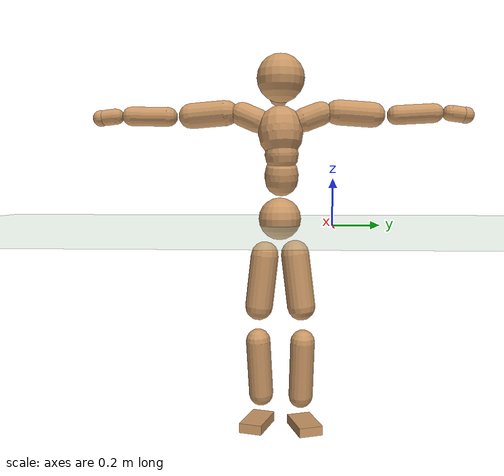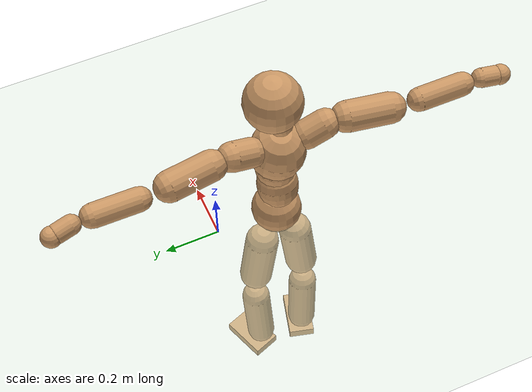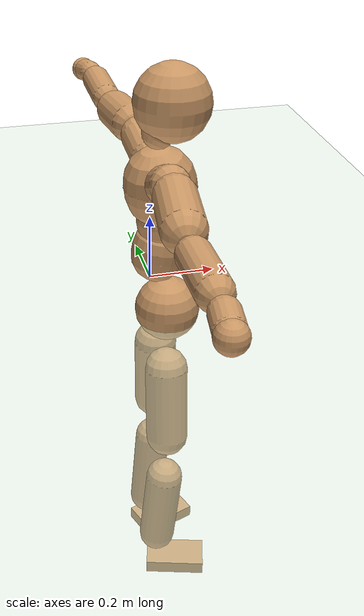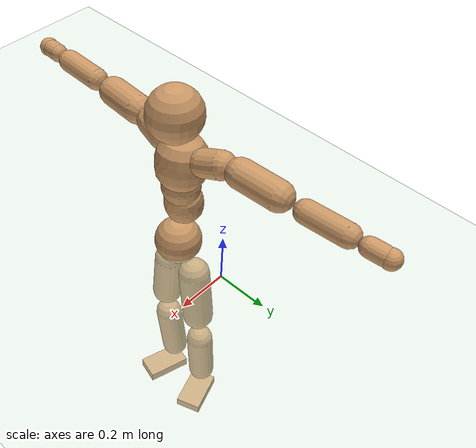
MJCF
<mujoco model="humanoid">
  <compiler coordinate="local"/>
  <default>
    <joint damping="0.0" armature="0.01" stiffness="0.0" limited="true"/>
    <geom conaffinity="1" condim="3" contype="7" margin="0.001" rgba="0.8 0.6 .4 1"/>
  </default>
  <asset>
    <texture type="skybox" builtin="gradient" rgb1=".4 .5 .6" rgb2="0 0 0" width="100" height="100"/>
    <texture builtin="flat" height="1278" mark="cross" markrgb="1 1 1" name="texgeom" random="0.01" rgb1="0.8 0.6 0.4" rgb2="0.8 0.6 0.4" type="cube" width="127"/>
    <texture builtin="checker" height="100" name="texplane" rgb1="0 0 0" rgb2="0.8 0.8 0.8" type="2d" width="100"/>
    <material name="MatPlane" reflectance="0.5" shininess="1" specular="1" texrepeat="60 60" texture="texplane"/>
    <material name="geom" texture="texgeom" texuniform="true"/>
  </asset>
  <worldbody>
    <light cutoff="100" diffuse="1 1 1" dir="-0 0 -1.3" directional="true" exponent="1" pos="0 0 1.3" specular=".1 .1 .1"/>
    <geom conaffinity="1" condim="3" name="floor" pos="0 0 0" rgba="0.8 0.9 0.8 1" size="100 100 .2" type="plane" material="MatPlane"/>
    <body name="Pelvis" pos="-0.003 -0.2279 0.0277">
      <freejoint name="Pelvis"/>
      <geom type="sphere" contype="1" conaffinity="1" density="500" size="0.0915" pos="0.0000 0.0000 0.0000" name="Pelvis"/>
      <body name="L_Hip" pos="-0.0194 0.0571 -0.0789">
        <joint name="L_Hip_x" type="hinge" pos="0 0 0" axis="1 0 0" stiffness="800" damping="80" armature="0.02" range="-180.0000 180.0000"/>
        <joint name="L_Hip_y" type="hinge" pos="0 0 0" axis="0 1 0" stiffness="800" damping="80" armature="0.02" range="-180.0000 180.0000"/>
        <joint name="L_Hip_z" type="hinge" pos="0 0 0" axis="0 0 1" stiffness="800" damping="80" armature="0.02" range="-180.0000 180.0000"/>
        <geom type="capsule" contype="1" conaffinity="1" density="500" fromto="0.0022 0.0092 -0.0769 0.0086 0.0367 -0.3076" size="0.062" name="L_Hip"/>
        <body name="L_Knee" pos="0.0108 0.0459 -0.3845">
          <joint name="L_Knee_x" type="hinge" pos="0 0 0" axis="1 0 0" stiffness="800" damping="80" armature="0.02" range="-180.0000 180.0000"/>
          <joint name="L_Knee_y" type="hinge" pos="0 0 0" axis="0 1 0" stiffness="800" damping="80" armature="0.02" range="-180.0000 180.0000"/>
          <joint name="L_Knee_z" type="hinge" pos="0 0 0" axis="0 0 1" stiffness="800" damping="80" armature="0.02" range="-180.0000 180.0000"/>
          <geom type="capsule" contype="1" conaffinity="1" density="500" fromto="-0.0069 -0.0028 -0.0844 -0.0278 -0.0111 -0.3375" size="0.0542" name="L_Knee"/>
          <body name="L_Ankle" pos="-0.0347 -0.0139 -0.4219">
            <joint name="L_Ankle_x" type="hinge" pos="0 0 0" axis="1 0 0" stiffness="800" damping="80" armature="0.02" range="-180.0000 180.0000"/>
            <joint name="L_Ankle_y" type="hinge" pos="0 0 0" axis="0 1 0" stiffness="800" damping="80" armature="0.02" range="-180.0000 180.0000"/>
            <joint name="L_Ankle_z" type="hinge" pos="0 0 0" axis="0 0 1" stiffness="800" damping="80" armature="0.02" range="-180.0000 180.0000"/>
            <geom type="box" contype="1" conaffinity="1" density="500" pos="0.0602 0.0216 -0.0299" size="0.0888 0.0527 0.0202" quat="0.9852 0.0000 0.0000 0.1713" name="L_Ankle"/>
            <body name="L_Toe" pos="0.1203 0.0432 -0.0599">
              <joint name="L_Toe_x" type="hinge" pos="0 0 0" axis="1 0 0" stiffness="500" damping="50" armature="0.02" range="-180.0000 180.0000"/>
              <joint name="L_Toe_y" type="hinge" pos="0 0 0" axis="0 1 0" stiffness="500" damping="50" armature="0.02" range="-180.0000 180.0000"/>
              <joint name="L_Toe_z" type="hinge" pos="0 0 0" axis="0 0 1" stiffness="500" damping="50" armature="0.02" range="-180.0000 180.0000"/>
              <geom type="box" contype="1" conaffinity="1" density="500" pos="0.0000 0.0000 0.0293" size="0.0011 0.0026 0.001" quat="0.9844 0.0000 0.0000 0.1759" name="L_Toe"/>
            </body>
          </body>
        </body>
      </body>
      <body name="R_Hip" pos="-0.0161 -0.0582 -0.0862">
        <joint name="R_Hip_x" type="hinge" pos="0 0 0" axis="1 0 0" stiffness="800" damping="80" armature="0.02" range="-180.0000 180.0000"/>
        <joint name="R_Hip_y" type="hinge" pos="0 0 0" axis="0 1 0" stiffness="800" damping="80" armature="0.02" range="-180.0000 180.0000"/>
        <joint name="R_Hip_z" type="hinge" pos="0 0 0" axis="0 0 1" stiffness="800" damping="80" armature="0.02" range="-180.0000 180.0000"/>
        <geom type="capsule" contype="1" conaffinity="1" density="500" fromto="-0.0006 -0.0087 -0.0758 -0.0023 -0.0349 -0.3031" size="0.0612" name="R_Hip"/>
        <body name="R_Knee" pos="-0.0029 -0.0436 -0.3789">
          <joint name="R_Knee_x" type="hinge" pos="0 0 0" axis="1 0 0" stiffness="800" damping="80" armature="0.02" range="-180.0000 180.0000"/>
          <joint name="R_Knee_y" type="hinge" pos="0 0 0" axis="0 1 0" stiffness="800" damping="80" armature="0.02" range="-180.0000 180.0000"/>
          <joint name="R_Knee_z" type="hinge" pos="0 0 0" axis="0 0 1" stiffness="800" damping="80" armature="0.02" range="-180.0000 180.0000"/>
          <geom type="capsule" contype="1" conaffinity="1" density="500" fromto="-0.0065 0.0036 -0.0827 -0.0262 0.0146 -0.3307" size="0.0545" name="R_Knee"/>
          <body name="R_Ankle" pos="-0.0327 0.0182 -0.4134">
            <joint name="R_Ankle_x" type="hinge" pos="0 0 0" axis="1 0 0" stiffness="800" damping="80" armature="0.02" range="-180.0000 180.0000"/>
            <joint name="R_Ankle_y" type="hinge" pos="0 0 0" axis="0 1 0" stiffness="800" damping="80" armature="0.02" range="-180.0000 180.0000"/>
            <joint name="R_Ankle_z" type="hinge" pos="0 0 0" axis="0 0 1" stiffness="800" damping="80" armature="0.02" range="-180.0000 180.0000"/>
            <geom type="box" contype="1" conaffinity="1" density="500" pos="0.0646 -0.0174 -0.0302" size="0.0906 0.0505 0.0211" quat="0.9913 0.0000 0.0000 -0.1315" name="R_Ankle"/>
            <body name="R_Toe" pos="0.1292 -0.0349 -0.0604">
              <joint name="R_Toe_x" type="hinge" pos="0 0 0" axis="1 0 0" stiffness="500" damping="50" armature="0.02" range="-180.0000 180.0000"/>
              <joint name="R_Toe_y" type="hinge" pos="0 0 0" axis="0 1 0" stiffness="500" damping="50" armature="0.02" range="-180.0000 180.0000"/>
              <joint name="R_Toe_z" type="hinge" pos="0 0 0" axis="0 0 1" stiffness="500" damping="50" armature="0.02" range="-180.0000 180.0000"/>
              <geom type="box" contype="1" conaffinity="1" density="500" pos="0.0000 0.0000 0.0299" size="0.001 0.0025 0.001" quat="0.9925 0.0000 0.0000 -0.1225" name="R_Toe"/>
            </body>
          </body>
        </body>
      </body>
      <body name="Torso" pos="-0.0377 0.0041 0.117">
        <joint name="Torso_x" type="hinge" pos="0 0 0" axis="1 0 0" stiffness="1000" damping="100" armature="0.02" range="-180.0000 180.0000"/>
        <joint name="Torso_y" type="hinge" pos="0 0 0" axis="0 1 0" stiffness="1000" damping="100" armature="0.02" range="-180.0000 180.0000"/>
        <joint name="Torso_z" type="hinge" pos="0 0 0" axis="0 0 1" stiffness="1000" damping="100" armature="0.02" range="-180.0000 180.0000"/>
        <geom type="capsule" contype="1" conaffinity="1" density="500" fromto="0.0146 0.0023 0.0794 0.0098 0.0016 0.0529" size="0.0732" name="Torso"/>
        <body name="Spine" pos="0.0244 0.0039 0.1323">
          <joint name="Spine_x" type="hinge" pos="0 0 0" axis="1 0 0" stiffness="1000" damping="100" armature="0.02" range="-180.0000 180.0000"/>
          <joint name="Spine_y" type="hinge" pos="0 0 0" axis="0 1 0" stiffness="1000" damping="100" armature="0.02" range="-180.0000 180.0000"/>
          <joint name="Spine_z" type="hinge" pos="0 0 0" axis="0 0 1" stiffness="1000" damping="100" armature="0.02" range="-180.0000 180.0000"/>
          <geom type="capsule" contype="1" conaffinity="1" density="500" fromto="0.0013 -0.0009 0.0324 0.0009 -0.0006 0.0216" size="0.073" name="Spine"/>
          <body name="Chest" pos="0.0021 -0.0015 0.0541">
            <joint name="Chest_x" type="hinge" pos="0 0 0" axis="1 0 0" stiffness="1000" damping="100" armature="0.02" range="-180.0000 180.0000"/>
            <joint name="Chest_y" type="hinge" pos="0 0 0" axis="0 1 0" stiffness="1000" damping="100" armature="0.02" range="-180.0000 180.0000"/>
            <joint name="Chest_z" type="hinge" pos="0 0 0" axis="0 0 1" stiffness="1000" damping="100" armature="0.02" range="-180.0000 180.0000"/>
            <geom type="capsule" contype="1" conaffinity="1" density="500" fromto="-0.0131 -0.0046 0.0846 -0.0087 -0.0031 0.0564" size="0.0971" name="Chest"/>
            <body name="Neck" pos="-0.0289 -0.0128 0.2043">
              <joint name="Neck_x" type="hinge" pos="0 0 0" axis="1 0 0" stiffness="500" damping="50" armature="0.02" range="-180.0000 180.0000"/>
              <joint name="Neck_y" type="hinge" pos="0 0 0" axis="0 1 0" stiffness="500" damping="50" armature="0.02" range="-180.0000 180.0000"/>
              <joint name="Neck_z" type="hinge" pos="0 0 0" axis="0 0 1" stiffness="500" damping="50" armature="0.02" range="-180.0000 180.0000"/>
              <geom type="capsule" contype="1" conaffinity="1" density="500" fromto="0.0095 0.0022 0.0176 0.0378 0.0087 0.0703" size="0.0439" name="Neck"/>
              <body name="Head" pos="0.0473 0.0109 0.0879">
                <joint name="Head_x" type="hinge" pos="0 0 0" axis="1 0 0" stiffness="500" damping="50" armature="0.02" range="-180.0000 180.0000"/>
                <joint name="Head_y" type="hinge" pos="0 0 0" axis="0 1 0" stiffness="500" damping="50" armature="0.02" range="-180.0000 180.0000"/>
                <joint name="Head_z" type="hinge" pos="0 0 0" axis="0 0 1" stiffness="500" damping="50" armature="0.02" range="-180.0000 180.0000"/>
                <geom type="sphere" contype="1" conaffinity="1" density="500" size="0.1020" pos="0.0000 0.0000 0.0000" name="Head"/>
              </body>
            </body>
            <body name="L_Thorax" pos="-0.0152 0.07 0.1105">
              <joint name="L_Thorax_x" type="hinge" pos="0 0 0" axis="1 0 0" stiffness="500" damping="50" armature="0.02" range="-180.0000 180.0000"/>
              <joint name="L_Thorax_y" type="hinge" pos="0 0 0" axis="0 1 0" stiffness="500" damping="50" armature="0.02" range="-180.0000 180.0000"/>
              <joint name="L_Thorax_z" type="hinge" pos="0 0 0" axis="0 0 1" stiffness="500" damping="50" armature="0.02" range="-180.0000 180.0000"/>
              <geom type="capsule" contype="1" conaffinity="1" density="500" fromto="-0.0033 0.0243 0.0094 -0.0131 0.0973 0.0376" size="0.052" name="L_Thorax"/>
              <body name="L_Shoulder" pos="-0.0164 0.1216 0.0469">
                <joint name="L_Shoulder_x" type="hinge" pos="0 0 0" axis="1 0 0" stiffness="500" damping="50" armature="0.02" range="-720.0000 720.0000"/>
                <joint name="L_Shoulder_y" type="hinge" pos="0 0 0" axis="0 1 0" stiffness="500" damping="50" armature="0.02" range="-720.0000 720.0000"/>
                <joint name="L_Shoulder_z" type="hinge" pos="0 0 0" axis="0 0 1" stiffness="500" damping="50" armature="0.02" range="-720.0000 720.0000"/>
                <geom type="capsule" contype="1" conaffinity="1" density="500" fromto="-0.0047 0.0502 -0.0034 -0.0188 0.2010 -0.0135" size="0.0545" name="L_Shoulder"/>
                <body name="L_Elbow" pos="-0.0235 0.2512 -0.0169">
                  <joint name="L_Elbow_x" type="hinge" pos="0 0 0" axis="1 0 0" stiffness="500" damping="50" armature="0.02" range="-720.0000 720.0000"/>
                  <joint name="L_Elbow_y" type="hinge" pos="0 0 0" axis="0 1 0" stiffness="500" damping="50" armature="0.02" range="-720.0000 720.0000"/>
                  <joint name="L_Elbow_z" type="hinge" pos="0 0 0" axis="0 0 1" stiffness="500" damping="50" armature="0.02" range="-720.0000 720.0000"/>
                  <geom type="capsule" contype="1" conaffinity="1" density="500" fromto="-0.0013 0.0534 0.0027 -0.0051 0.2136 0.0108" size="0.0419" name="L_Elbow"/>
                  <body name="L_Wrist" pos="-0.0064 0.267 0.0136">
                    <joint name="L_Wrist_x" type="hinge" pos="0 0 0" axis="1 0 0" stiffness="300" damping="30" armature="0.02" range="-180.0000 180.0000"/>
                    <joint name="L_Wrist_y" type="hinge" pos="0 0 0" axis="0 1 0" stiffness="300" damping="30" armature="0.02" range="-180.0000 180.0000"/>
                    <joint name="L_Wrist_z" type="hinge" pos="0 0 0" axis="0 0 1" stiffness="300" damping="30" armature="0.02" range="-180.0000 180.0000"/>
                    <geom type="capsule" contype="1" conaffinity="1" density="500" fromto="-0.0032 0.0176 -0.0022 -0.0128 0.0704 -0.0087" size="0.0343" name="L_Wrist"/>
                    <body name="L_Hand" pos="-0.016 0.0881 -0.0109">
                      <joint name="L_Hand_x" type="hinge" pos="0 0 0" axis="1 0 0" stiffness="300" damping="30" armature="0.02" range="-180.0000 180.0000"/>
                      <joint name="L_Hand_y" type="hinge" pos="0 0 0" axis="0 1 0" stiffness="300" damping="30" armature="0.02" range="-180.0000 180.0000"/>
                      <joint name="L_Hand_z" type="hinge" pos="0 0 0" axis="0 0 1" stiffness="300" damping="30" armature="0.02" range="-180.0000 180.0000"/>
                      <geom type="sphere" contype="1" conaffinity="1" density="500" size="0.0360" pos="0.0000 0.0000 0.0000" name="L_Hand"/>
                    </body>
                  </body>
                </body>
              </body>
            </body>
            <body name="R_Thorax" pos="-0.0215 -0.0804 0.1081">
              <joint name="R_Thorax_x" type="hinge" pos="0 0 0" axis="1 0 0" stiffness="500" damping="50" armature="0.02" range="-180.0000 180.0000"/>
              <joint name="R_Thorax_y" type="hinge" pos="0 0 0" axis="0 1 0" stiffness="500" damping="50" armature="0.02" range="-180.0000 180.0000"/>
              <joint name="R_Thorax_z" type="hinge" pos="0 0 0" axis="0 0 1" stiffness="500" damping="50" armature="0.02" range="-180.0000 180.0000"/>
              <geom type="capsule" contype="1" conaffinity="1" density="500" fromto="-0.0014 -0.0224 0.0098 -0.0057 -0.0894 0.0391" size="0.0521" name="R_Thorax"/>
              <body name="R_Shoulder" pos="-0.0071 -0.1118 0.0488">
                <joint name="R_Shoulder_x" type="hinge" pos="0 0 0" axis="1 0 0" stiffness="500" damping="50" armature="0.02" range="-720.0000 720.0000"/>
                <joint name="R_Shoulder_y" type="hinge" pos="0 0 0" axis="0 1 0" stiffness="500" damping="50" armature="0.02" range="-720.0000 720.0000"/>
                <joint name="R_Shoulder_z" type="hinge" pos="0 0 0" axis="0 0 1" stiffness="500" damping="50" armature="0.02" range="-720.0000 720.0000"/>
                <geom type="capsule" contype="1" conaffinity="1" density="500" fromto="-0.0063 -0.0515 -0.0035 -0.0253 -0.2058 -0.0138" size="0.0552" name="R_Shoulder"/>
                <body name="R_Elbow" pos="-0.0316 -0.2573 -0.0173">
                  <joint name="R_Elbow_x" type="hinge" pos="0 0 0" axis="1 0 0" stiffness="500" damping="50" armature="0.02" range="-720.0000 720.0000"/>
                  <joint name="R_Elbow_y" type="hinge" pos="0 0 0" axis="0 1 0" stiffness="500" damping="50" armature="0.02" range="-720.0000 720.0000"/>
                  <joint name="R_Elbow_z" type="hinge" pos="0 0 0" axis="0 0 1" stiffness="500" damping="50" armature="0.02" range="-720.0000 720.0000"/>
                  <geom type="capsule" contype="1" conaffinity="1" density="500" fromto="-0.0009 -0.0538 0.0013 -0.0034 -0.2154 0.0050" size="0.0422" name="R_Elbow"/>
                  <body name="R_Wrist" pos="-0.0043 -0.2692 0.0063">
                    <joint name="R_Wrist_x" type="hinge" pos="0 0 0" axis="1 0 0" stiffness="300" damping="30" armature="0.02" range="-180.0000 180.0000"/>
                    <joint name="R_Wrist_y" type="hinge" pos="0 0 0" axis="0 1 0" stiffness="300" damping="30" armature="0.02" range="-180.0000 180.0000"/>
                    <joint name="R_Wrist_z" type="hinge" pos="0 0 0" axis="0 0 1" stiffness="300" damping="30" armature="0.02" range="-180.0000 180.0000"/>
                    <geom type="capsule" contype="1" conaffinity="1" density="500" fromto="-0.0021 -0.0179 -0.0018 -0.0084 -0.0715 -0.0070" size="0.0346" name="R_Wrist"/>
                    <body name="R_Hand" pos="-0.0105 -0.0894 -0.0088">
                      <joint name="R_Hand_x" type="hinge" pos="0 0 0" axis="1 0 0" stiffness="300" damping="30" armature="0.02" range="-180.0000 180.0000"/>
                      <joint name="R_Hand_y" type="hinge" pos="0 0 0" axis="0 1 0" stiffness="300" damping="30" armature="0.02" range="-180.0000 180.0000"/>
                      <joint name="R_Hand_z" type="hinge" pos="0 0 0" axis="0 0 1" stiffness="300" damping="30" armature="0.02" range="-180.0000 180.0000"/>
                      <geom type="sphere" contype="1" conaffinity="1" density="500" size="0.0362" pos="0.0000 0.0000 0.0000" name="R_Hand"/>
                    </body>
                  </body>
                </body>
              </body>
            </body>
          </body>
        </body>
      </body>
    </body>
  </worldbody>
  <actuator>
    <motor name="L_Hip_x" joint="L_Hip_x" gear="500"/>
    <motor name="L_Hip_y" joint="L_Hip_y" gear="500"/>
    <motor name="L_Hip_z" joint="L_Hip_z" gear="500"/>
    <motor name="L_Knee_x" joint="L_Knee_x" gear="500"/>
    <motor name="L_Knee_y" joint="L_Knee_y" gear="500"/>
    <motor name="L_Knee_z" joint="L_Knee_z" gear="500"/>
    <motor name="L_Ankle_x" joint="L_Ankle_x" gear="500"/>
    <motor name="L_Ankle_y" joint="L_Ankle_y" gear="500"/>
    <motor name="L_Ankle_z" joint="L_Ankle_z" gear="500"/>
    <motor name="L_Toe_x" joint="L_Toe_x" gear="500"/>
    <motor name="L_Toe_y" joint="L_Toe_y" gear="500"/>
    <motor name="L_Toe_z" joint="L_Toe_z" gear="500"/>
    <motor name="R_Hip_x" joint="R_Hip_x" gear="500"/>
    <motor name="R_Hip_y" joint="R_Hip_y" gear="500"/>
    <motor name="R_Hip_z" joint="R_Hip_z" gear="500"/>
    <motor name="R_Knee_x" joint="R_Knee_x" gear="500"/>
    <motor name="R_Knee_y" joint="R_Knee_y" gear="500"/>
    <motor name="R_Knee_z" joint="R_Knee_z" gear="500"/>
    <motor name="R_Ankle_x" joint="R_Ankle_x" gear="500"/>
    <motor name="R_Ankle_y" joint="R_Ankle_y" gear="500"/>
    <motor name="R_Ankle_z" joint="R_Ankle_z" gear="500"/>
    <motor name="R_Toe_x" joint="R_Toe_x" gear="500"/>
    <motor name="R_Toe_y" joint="R_Toe_y" gear="500"/>
    <motor name="R_Toe_z" joint="R_Toe_z" gear="500"/>
    <motor name="Torso_x" joint="Torso_x" gear="500"/>
    <motor name="Torso_y" joint="Torso_y" gear="500"/>
    <motor name="Torso_z" joint="Torso_z" gear="500"/>
    <motor name="Spine_x" joint="Spine_x" gear="500"/>
    <motor name="Spine_y" joint="Spine_y" gear="500"/>
    <motor name="Spine_z" joint="Spine_z" gear="500"/>
    <motor name="Chest_x" joint="Chest_x" gear="500"/>
    <motor name="Chest_y" joint="Chest_y" gear="500"/>
    <motor name="Chest_z" joint="Chest_z" gear="500"/>
    <motor name="Neck_x" joint="Neck_x" gear="500"/>
    <motor name="Neck_y" joint="Neck_y" gear="500"/>
    <motor name="Neck_z" joint="Neck_z" gear="500"/>
    <motor name="Head_x" joint="Head_x" gear="500"/>
    <motor name="Head_y" joint="Head_y" gear="500"/>
    <motor name="Head_z" joint="Head_z" gear="500"/>
    <motor name="L_Thorax_x" joint="L_Thorax_x" gear="500"/>
    <motor name="L_Thorax_y" joint="L_Thorax_y" gear="500"/>
    <motor name="L_Thorax_z" joint="L_Thorax_z" gear="500"/>
    <motor name="L_Shoulder_x" joint="L_Shoulder_x" gear="500"/>
    <motor name="L_Shoulder_y" joint="L_Shoulder_y" gear="500"/>
    <motor name="L_Shoulder_z" joint="L_Shoulder_z" gear="500"/>
    <motor name="L_Elbow_x" joint="L_Elbow_x" gear="500"/>
    <motor name="L_Elbow_y" joint="L_Elbow_y" gear="500"/>
    <motor name="L_Elbow_z" joint="L_Elbow_z" gear="500"/>
    <motor name="L_Wrist_x" joint="L_Wrist_x" gear="500"/>
    <motor name="L_Wrist_y" joint="L_Wrist_y" gear="500"/>
    <motor name="L_Wrist_z" joint="L_Wrist_z" gear="500"/>
    <motor name="L_Hand_x" joint="L_Hand_x" gear="500"/>
    <motor name="L_Hand_y" joint="L_Hand_y" gear="500"/>
    <motor name="L_Hand_z" joint="L_Hand_z" gear="500"/>
    <motor name="R_Thorax_x" joint="R_Thorax_x" gear="500"/>
    <motor name="R_Thorax_y" joint="R_Thorax_y" gear="500"/>
    <motor name="R_Thorax_z" joint="R_Thorax_z" gear="500"/>
    <motor name="R_Shoulder_x" joint="R_Shoulder_x" gear="500"/>
    <motor name="R_Shoulder_y" joint="R_Shoulder_y" gear="500"/>
    <motor name="R_Shoulder_z" joint="R_Shoulder_z" gear="500"/>
    <motor name="R_Elbow_x" joint="R_Elbow_x" gear="500"/>
    <motor name="R_Elbow_y" joint="R_Elbow_y" gear="500"/>
    <motor name="R_Elbow_z" joint="R_Elbow_z" gear="500"/>
    <motor name="R_Wrist_x" joint="R_Wrist_x" gear="500"/>
    <motor name="R_Wrist_y" joint="R_Wrist_y" gear="500"/>
    <motor name="R_Wrist_z" joint="R_Wrist_z" gear="500"/>
    <motor name="R_Hand_x" joint="R_Hand_x" gear="500"/>
    <motor name="R_Hand_y" joint="R_Hand_y" gear="500"/>
    <motor name="R_Hand_z" joint="R_Hand_z" gear="500"/>
  </actuator>
  <contact>
    <exclude body1="Torso" body2="Chest"/>
    <exclude body1="Head" body2="Chest"/>
    <exclude body1="R_Knee" body2="R_Toe"/>
    <exclude body1="R_Knee" body2="L_Ankle"/>
    <exclude body1="R_Knee" body2="L_Toe"/>
    <exclude body1="L_Knee" body2="L_Toe"/>
    <exclude body1="L_Knee" body2="R_Ankle"/>
    <exclude body1="L_Knee" body2="R_Toe"/>
    <exclude body1="L_Shoulder" body2="Chest"/>
    <exclude body1="R_Shoulder" body2="Chest"/>
  </contact>
  <sensor/>
  <size njmax="700" nconmax="700"/>
</mujoco>
